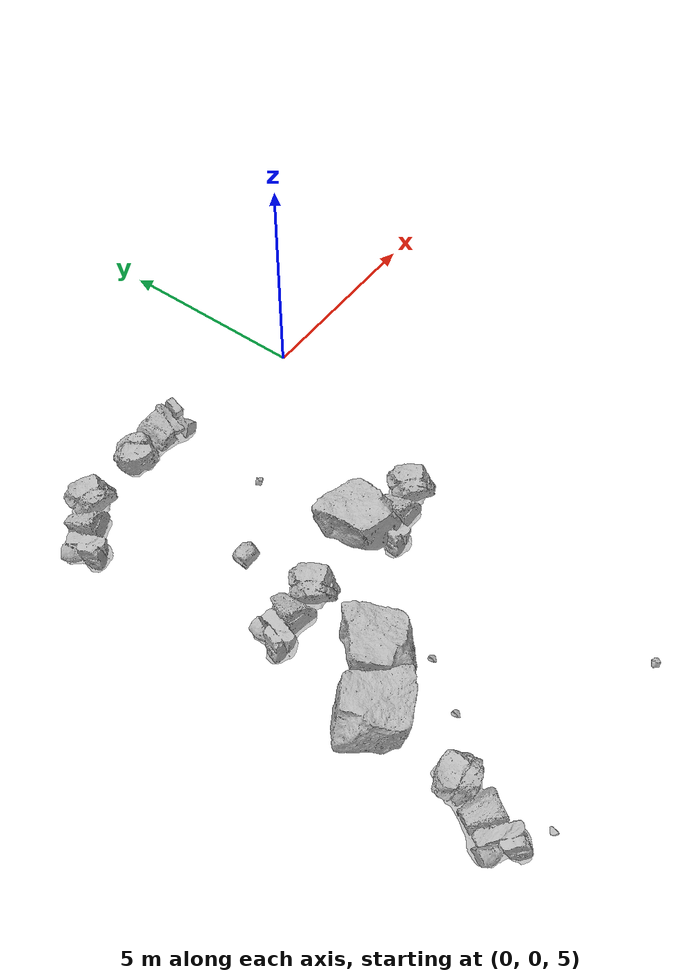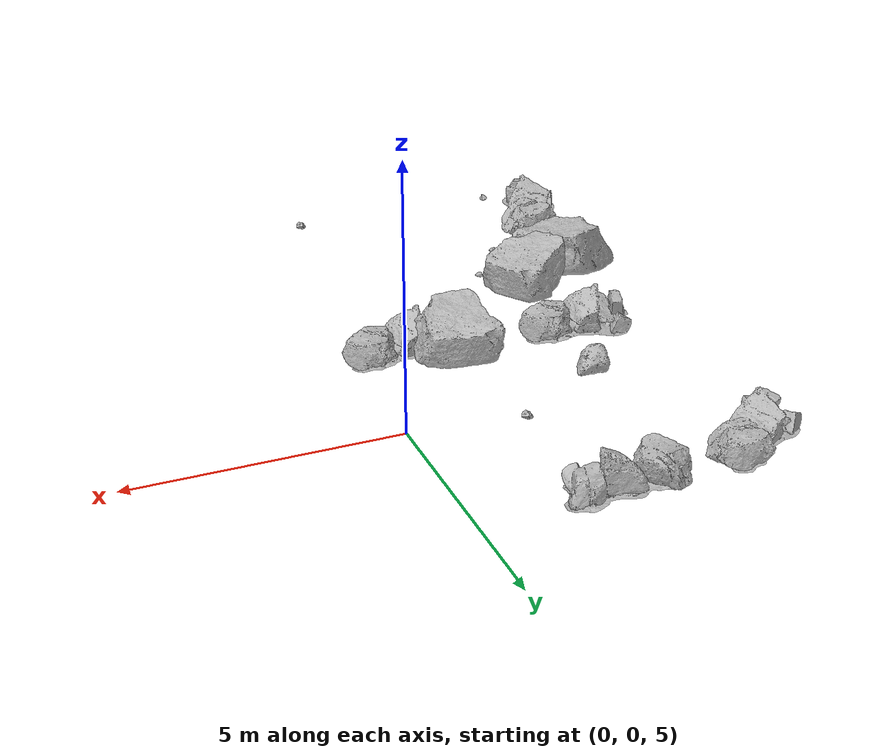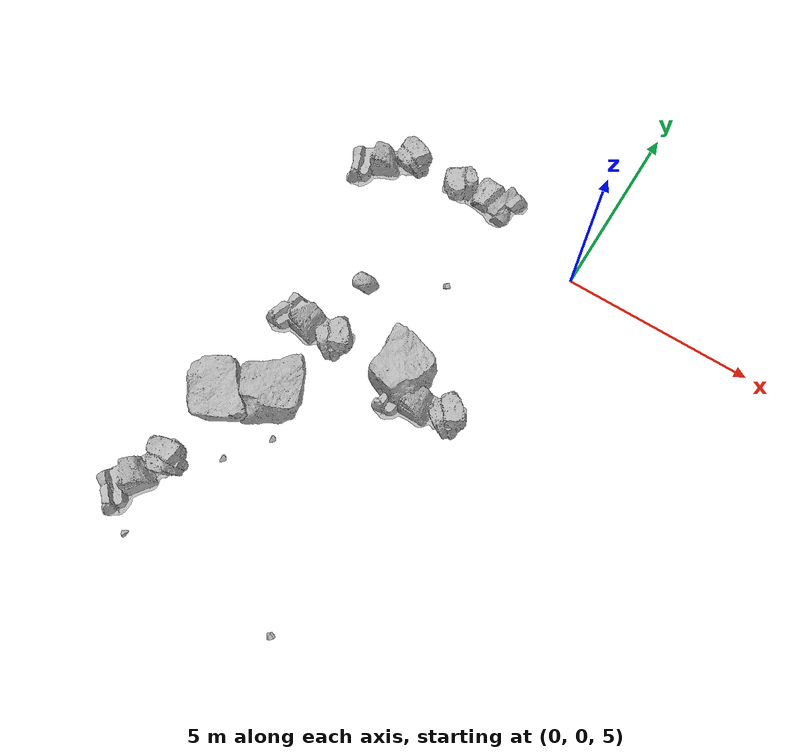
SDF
<sdf version="1.7">
 <world name="marsyard">
  <model name="Rock_10">
   <static>true</static>
   <pose>-5.2307 -4.3875 4.0000 0.0000 0.0000 -3.1035</pose>
   <link name="link">
    <visual name="visual">
     <geometry><mesh><uri>package://rock_generator/rocks_ws/rock_2/meshes/rock_2.stl</uri></mesh></geometry>
    </visual>
    <collision name="collision">
     <geometry><mesh><uri>package://rock_generator/rocks_ws/rock_2/meshes/rock_2.stl</uri></mesh></geometry>
    </collision>
   </link>
  </model>
  <model name="Rock_15">
   <static>true</static>
   <pose>-4.7662 -2.6395 4.0000 0.0000 0.0000 -2.1385</pose>
   <link name="link">
    <visual name="visual">
     <geometry><mesh><uri>package://rock_generator/rocks_ws/rock_3/meshes/rock_3.stl</uri></mesh></geometry>
    </visual>
    <collision name="collision">
     <geometry><mesh><uri>package://rock_generator/rocks_ws/rock_3/meshes/rock_3.stl</uri></mesh></geometry>
    </collision>
   </link>
  </model>
  <model name="Rock_16">
   <static>true</static>
   <pose>-6.1489 -7.1278 4.0000 0.0000 0.0000 -1.8087</pose>
   <link name="link">
    <visual name="visual">
     <geometry><mesh><uri>package://rock_generator/rocks_ws/rock_1/meshes/rock_1.stl</uri></mesh></geometry>
    </visual>
    <collision name="collision">
     <geometry><mesh><uri>package://rock_generator/rocks_ws/rock_1/meshes/rock_1.stl</uri></mesh></geometry>
    </collision>
   </link>
  </model>
  <model name="Rock_18">
   <static>true</static>
   <pose>-6.1425 -11.3436 4.0000 0.0000 0.0000 0.8303</pose>
   <link name="link">
    <visual name="visual">
     <geometry><mesh><uri>package://rock_generator/rocks_ws/rock_7/meshes/rock_7.stl</uri></mesh></geometry>
    </visual>
    <collision name="collision">
     <geometry><mesh><uri>package://rock_generator/rocks_ws/rock_7/meshes/rock_7.stl</uri></mesh></geometry>
    </collision>
   </link>
  </model>
  <model name="Rock_35">
   <static>true</static>
   <pose>-5.2015 -8.5264 4.0000 0.0000 0.0000 -2.0583</pose>
   <link name="link">
    <visual name="visual">
     <geometry><mesh><uri>package://rock_generator/rocks_ws/rock_7/meshes/rock_7.stl</uri></mesh></geometry>
    </visual>
    <collision name="collision">
     <geometry><mesh><uri>package://rock_generator/rocks_ws/rock_7/meshes/rock_7.stl</uri></mesh></geometry>
    </collision>
   </link>
  </model>
  <model name="Rock_36">
   <static>true</static>
   <pose>-2.6919 -4.1754 4.0000 0.0000 0.0000 0.5956</pose>
   <link name="link">
    <visual name="visual">
     <geometry><mesh><uri>package://rock_generator/rocks_ws/rock_1/meshes/rock_1.stl</uri></mesh></geometry>
    </visual>
    <collision name="collision">
     <geometry><mesh><uri>package://rock_generator/rocks_ws/rock_1/meshes/rock_1.stl</uri></mesh></geometry>
    </collision>
   </link>
  </model>
  <model name="Rock_55">
   <static>true</static>
   <pose>-1.6687 -11.3909 4.0000 0.0000 0.0000 1.1999</pose>
   <link name="link">
    <visual name="visual">
     <geometry><mesh><uri>package://rock_generator/rocks_ws/rock_9/meshes/rock_9.stl</uri></mesh></geometry>
    </visual>
    <collision name="collision">
     <geometry><mesh><uri>package://rock_generator/rocks_ws/rock_9/meshes/rock_9.stl</uri></mesh></geometry>
    </collision>
   </link>
  </model>
  <model name="Rock_59">
   <static>true</static>
   <pose>-6.6464 -9.8826 4.0000 0.0000 0.0000 -1.9683</pose>
   <link name="link">
    <visual name="visual">
     <geometry><mesh><uri>package://rock_generator/rocks_ws/rock_2/meshes/rock_2.stl</uri></mesh></geometry>
    </visual>
    <collision name="collision">
     <geometry><mesh><uri>package://rock_generator/rocks_ws/rock_2/meshes/rock_2.stl</uri></mesh></geometry>
    </collision>
   </link>
  </model>
  <model name="Rock_71">
   <static>true</static>
   <pose>-2.8968 -1.4485 4.0000 0.0000 0.0000 0.9297</pose>
   <link name="link">
    <visual name="visual">
     <geometry><mesh><uri>package://rock_generator/rocks_ws/rock_9/meshes/rock_9.stl</uri></mesh></geometry>
    </visual>
    <collision name="collision">
     <geometry><mesh><uri>package://rock_generator/rocks_ws/rock_9/meshes/rock_9.stl</uri></mesh></geometry>
    </collision>
   </link>
  </model>
  <model name="Rock_72">
   <static>true</static>
   <pose>-4.4298 -7.4484 4.0000 0.0000 0.0000 -1.9895</pose>
   <link name="link">
    <visual name="visual">
     <geometry><mesh><uri>package://rock_generator/rocks_ws/rock_7/meshes/rock_7.stl</uri></mesh></geometry>
    </visual>
    <collision name="collision">
     <geometry><mesh><uri>package://rock_generator/rocks_ws/rock_7/meshes/rock_7.stl</uri></mesh></geometry>
    </collision>
   </link>
  </model>
  <model name="Rock_142">
   <static>true</static>
   <pose>-6.2699 0.9806 4.0000 0.0000 0.0000 -2.4389</pose>
   <link name="link">
    <visual name="visual">
     <geometry><mesh><uri>package://rock_generator/rocks_ws/rock_2/meshes/rock_2.stl</uri></mesh></geometry>
    </visual>
    <collision name="collision">
     <geometry><mesh><uri>package://rock_generator/rocks_ws/rock_2/meshes/rock_2.stl</uri></mesh></geometry>
    </collision>
   </link>
  </model>
  <model name="Rock_148">
   <static>true</static>
   <pose>-5.1396 -6.3234 4.0000 0.0000 0.0000 -0.2693</pose>
   <link name="link">
    <visual name="visual">
     <geometry><mesh><uri>package://rock_generator/rocks_ws/rock_1/meshes/rock_1.stl</uri></mesh></geometry>
    </visual>
    <collision name="collision">
     <geometry><mesh><uri>package://rock_generator/rocks_ws/rock_1/meshes/rock_1.stl</uri></mesh></geometry>
    </collision>
   </link>
  </model>
  <model name="Rock_170">
   <static>true</static>
   <pose>-1.5640 -4.7300 4.0000 0.0000 0.0000 -2.9140</pose>
   <link name="link">
    <visual name="visual">
     <geometry><mesh><uri>package://rock_generator/rocks_ws/rock_2/meshes/rock_2.stl</uri></mesh></geometry>
    </visual>
    <collision name="collision">
     <geometry><mesh><uri>package://rock_generator/rocks_ws/rock_2/meshes/rock_2.stl</uri></mesh></geometry>
    </collision>
   </link>
  </model>
  <model name="Rock_171">
   <static>true</static>
   <pose>-3.5460 1.4297 4.0000 0.0000 0.0000 0.0460</pose>
   <link name="link">
    <visual name="visual">
     <geometry><mesh><uri>package://rock_generator/rocks_ws/rock_2/meshes/rock_2.stl</uri></mesh></geometry>
    </visual>
    <collision name="collision">
     <geometry><mesh><uri>package://rock_generator/rocks_ws/rock_2/meshes/rock_2.stl</uri></mesh></geometry>
    </collision>
   </link>
  </model>
 </world>
</sdf>
